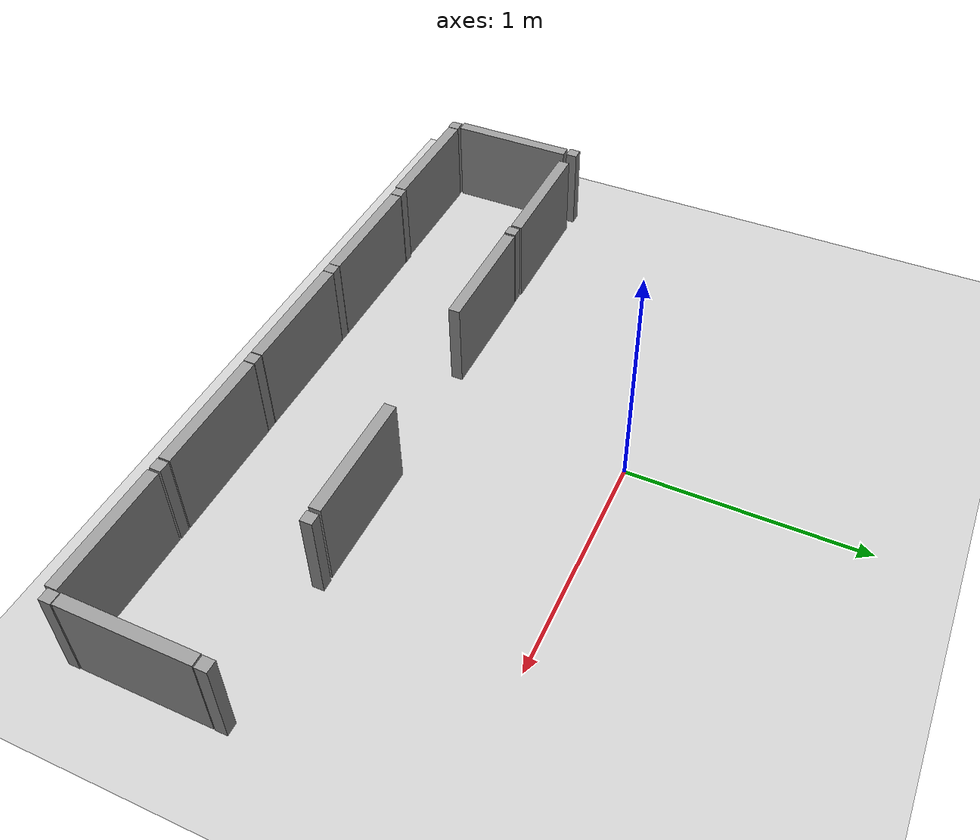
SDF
<sdf version="1.6">
 <world name="default">
  <model name="ground_plane">
   <static>1</static>
   <link name="link">
    <collision name="collision">
     <geometry><plane><normal>0 0 1</normal><size>100 100</size></plane></geometry>
     <surface>
      <contact><collide_bitmask>65535</collide_bitmask></contact>
      <friction><ode><mu>100</mu><mu2>50</mu2></ode></friction>
     </surface>
    </collision>
    <visual name="visual">
     <cast_shadows>0</cast_shadows>
     <geometry><plane><normal>0 0 1</normal><size>100 100</size></plane></geometry>
     <material>
      <script><uri>file://media/materials/scripts/gazebo.material</uri><name>Gazebo/Grey</name></script>
     </material>
    </visual>
   </link>
  </model>
  <model name="white_maze">
   <link name="link_0">
    <inertial>
     <mass>1</mass>
     <inertia>
      <ixx>0.166667</ixx>
      <ixy>0</ixy>
      <ixz>0</ixz>
      <iyy>0.166667</iyy>
      <iyz>0</iyz>
      <izz>0.166667</izz>
     </inertia>
    </inertial>
    <pose>-1.23382 -1.58127 0 0 -0 0</pose>
    <visual name="visual">
     <geometry><box><size>0.55 0.05 0.4</size></box></geometry>
     <material>
      <lighting>1</lighting>
      <script><uri>file://media/materials/scripts/gazebo.material</uri><name>Gazebo/Grey</name></script>
      <shader type="vertex"><normal_map>__default__</normal_map></shader>
      <ambient>1 1 1 1</ambient>
      <diffuse>0.7 0.7 0.7 1</diffuse>
      <specular>0.01 0.01 0.01 1</specular>
      <emissive>0 0 0 1</emissive>
     </material>
    </visual>
    <collision name="collision">
     <geometry><box><size>0.55 0.05 0.4</size></box></geometry>
     <surface>
      <friction>
       <ode><mu>1</mu><mu2>1</mu2><fdir1>0 0 0</fdir1><slip1>0</slip1><slip2>0</slip2></ode>
       <torsional>
        <coefficient>1</coefficient>
        <patch_radius>0</patch_radius>
        <surface_radius>0</surface_radius>
        <use_patch_radius>1</use_patch_radius>
        <ode><slip>0</slip></ode>
       </torsional>
      </friction>
      <bounce><restitution_coefficient>0</restitution_coefficient><threshold>1e+06</threshold></bounce>
      <contact>
       <collide_without_contact>0</collide_without_contact>
       <collide_without_contact_bitmask>1</collide_without_contact_bitmask>
       <collide_bitmask>1</collide_bitmask>
       <ode>
        <soft_cfm>0</soft_cfm>
        <soft_erp>0.2</soft_erp>
        <kp>1e+13</kp>
        <kd>1</kd>
        <max_vel>0.01</max_vel>
        <min_depth>0</min_depth>
       </ode>
       <bullet>
        <split_impulse>1</split_impulse>
        <split_impulse_penetration_threshold>-0.01</split_impulse_penetration_threshold>
        <soft_cfm>0</soft_cfm>
        <soft_erp>0.2</soft_erp>
        <kp>1e+13</kp>
        <kd>1</kd>
       </bullet>
      </contact>
     </surface>
    </collision>
   </link>
   <link name="link_0_clone">
    <inertial>
     <mass>1</mass>
     <inertia>
      <ixx>0.166667</ixx>
      <ixy>0</ixy>
      <ixz>0</ixz>
      <iyy>0.166667</iyy>
      <iyz>0</iyz>
      <izz>0.166667</izz>
     </inertia>
    </inertial>
    <pose>-0.627493 -1.57445 0 0 -0 0</pose>
    <visual name="visual">
     <geometry><box><size>0.55 0.05 0.4</size></box></geometry>
     <material>
      <lighting>1</lighting>
      <script><uri>file://media/materials/scripts/gazebo.material</uri><name>Gazebo/Grey</name></script>
      <shader type="vertex"><normal_map>__default__</normal_map></shader>
      <ambient>1 1 1 1</ambient>
      <diffuse>0.7 0.7 0.7 1</diffuse>
      <specular>0.01 0.01 0.01 1</specular>
      <emissive>0 0 0 1</emissive>
     </material>
    </visual>
    <collision name="collision">
     <geometry><box><size>0.55 0.05 0.4</size></box></geometry>
     <surface>
      <friction>
       <ode><mu>1</mu><mu2>1</mu2><fdir1>0 0 0</fdir1><slip1>0</slip1><slip2>0</slip2></ode>
       <torsional>
        <coefficient>1</coefficient>
        <patch_radius>0</patch_radius>
        <surface_radius>0</surface_radius>
        <use_patch_radius>1</use_patch_radius>
        <ode><slip>0</slip></ode>
       </torsional>
      </friction>
      <bounce><restitution_coefficient>0</restitution_coefficient><threshold>1e+06</threshold></bounce>
      <contact>
       <collide_without_contact>0</collide_without_contact>
       <collide_without_contact_bitmask>1</collide_without_contact_bitmask>
       <collide_bitmask>1</collide_bitmask>
       <ode>
        <soft_cfm>0</soft_cfm>
        <soft_erp>0.2</soft_erp>
        <kp>1e+13</kp>
        <kd>1</kd>
        <max_vel>0.01</max_vel>
        <min_depth>0</min_depth>
       </ode>
       <bullet>
        <split_impulse>1</split_impulse>
        <split_impulse_penetration_threshold>-0.01</split_impulse_penetration_threshold>
        <soft_cfm>0</soft_cfm>
        <soft_erp>0.2</soft_erp>
        <kp>1e+13</kp>
        <kd>1</kd>
       </bullet>
      </contact>
     </surface>
    </collision>
   </link>
   <link name="link_0_clone_0">
    <inertial>
     <mass>1</mass>
     <inertia>
      <ixx>0.166667</ixx>
      <ixy>0</ixy>
      <ixz>0</ixz>
      <iyy>0.166667</iyy>
      <iyz>0</iyz>
      <izz>0.166667</izz>
     </inertia>
    </inertial>
    <pose>-0.023747 -1.57344 0 0 -0 0</pose>
    <visual name="visual">
     <geometry><box><size>0.55 0.05 0.4</size></box></geometry>
     <material>
      <lighting>1</lighting>
      <script><uri>file://media/materials/scripts/gazebo.material</uri><name>Gazebo/Grey</name></script>
      <shader type="vertex"><normal_map>__default__</normal_map></shader>
      <ambient>1 1 1 1</ambient>
      <diffuse>0.7 0.7 0.7 1</diffuse>
      <specular>0.01 0.01 0.01 1</specular>
      <emissive>0 0 0 1</emissive>
     </material>
    </visual>
    <collision name="collision">
     <geometry><box><size>0.55 0.05 0.4</size></box></geometry>
     <surface>
      <friction>
       <ode><mu>1</mu><mu2>1</mu2><fdir1>0 0 0</fdir1><slip1>0</slip1><slip2>0</slip2></ode>
       <torsional>
        <coefficient>1</coefficient>
        <patch_radius>0</patch_radius>
        <surface_radius>0</surface_radius>
        <use_patch_radius>1</use_patch_radius>
        <ode><slip>0</slip></ode>
       </torsional>
      </friction>
      <bounce><restitution_coefficient>0</restitution_coefficient><threshold>1e+06</threshold></bounce>
      <contact>
       <collide_without_contact>0</collide_without_contact>
       <collide_without_contact_bitmask>1</collide_without_contact_bitmask>
       <collide_bitmask>1</collide_bitmask>
       <ode>
        <soft_cfm>0</soft_cfm>
        <soft_erp>0.2</soft_erp>
        <kp>1e+13</kp>
        <kd>1</kd>
        <max_vel>0.01</max_vel>
        <min_depth>0</min_depth>
       </ode>
       <bullet>
        <split_impulse>1</split_impulse>
        <split_impulse_penetration_threshold>-0.01</split_impulse_penetration_threshold>
        <soft_cfm>0</soft_cfm>
        <soft_erp>0.2</soft_erp>
        <kp>1e+13</kp>
        <kd>1</kd>
       </bullet>
      </contact>
     </surface>
    </collision>
   </link>
   <link name="link_0_clone_1">
    <inertial>
     <mass>1</mass>
     <inertia>
      <ixx>0.166667</ixx>
      <ixy>0</ixy>
      <ixz>0</ixz>
      <iyy>0.166667</iyy>
      <iyz>0</iyz>
      <izz>0.166667</izz>
     </inertia>
    </inertial>
    <pose>0.582587 -1.57153 0 0 -0 0</pose>
    <visual name="visual">
     <geometry><box><size>0.55 0.05 0.4</size></box></geometry>
     <material>
      <lighting>1</lighting>
      <script><uri>file://media/materials/scripts/gazebo.material</uri><name>Gazebo/Grey</name></script>
      <shader type="vertex"><normal_map>__default__</normal_map></shader>
      <ambient>1 1 1 1</ambient>
      <diffuse>0.7 0.7 0.7 1</diffuse>
      <specular>0.01 0.01 0.01 1</specular>
      <emissive>0 0 0 1</emissive>
     </material>
    </visual>
    <collision name="collision">
     <geometry><box><size>0.55 0.05 0.4</size></box></geometry>
     <surface>
      <friction>
       <ode><mu>1</mu><mu2>1</mu2><fdir1>0 0 0</fdir1><slip1>0</slip1><slip2>0</slip2></ode>
       <torsional>
        <coefficient>1</coefficient>
        <patch_radius>0</patch_radius>
        <surface_radius>0</surface_radius>
        <use_patch_radius>1</use_patch_radius>
        <ode><slip>0</slip></ode>
       </torsional>
      </friction>
      <bounce><restitution_coefficient>0</restitution_coefficient><threshold>1e+06</threshold></bounce>
      <contact>
       <collide_without_contact>0</collide_without_contact>
       <collide_without_contact_bitmask>1</collide_without_contact_bitmask>
       <collide_bitmask>1</collide_bitmask>
       <ode>
        <soft_cfm>0</soft_cfm>
        <soft_erp>0.2</soft_erp>
        <kp>1e+13</kp>
        <kd>1</kd>
        <max_vel>0.01</max_vel>
        <min_depth>0</min_depth>
       </ode>
       <bullet>
        <split_impulse>1</split_impulse>
        <split_impulse_penetration_threshold>-0.01</split_impulse_penetration_threshold>
        <soft_cfm>0</soft_cfm>
        <soft_erp>0.2</soft_erp>
        <kp>1e+13</kp>
        <kd>1</kd>
       </bullet>
      </contact>
     </surface>
    </collision>
   </link>
   <link name="link_0_clone_1_clone">
    <inertial>
     <mass>1</mass>
     <inertia>
      <ixx>0.166667</ixx>
      <ixy>0</ixy>
      <ixz>0</ixz>
      <iyy>0.166667</iyy>
      <iyz>0</iyz>
      <izz>0.166667</izz>
     </inertia>
    </inertial>
    <pose>1.49724 -1.25172 0 0 0 -1.57264</pose>
    <visual name="visual">
     <geometry><box><size>0.55 0.05 0.4</size></box></geometry>
     <material>
      <lighting>1</lighting>
      <script><uri>file://media/materials/scripts/gazebo.material</uri><name>Gazebo/Grey</name></script>
      <shader type="vertex"><normal_map>__default__</normal_map></shader>
      <ambient>1 1 1 1</ambient>
      <diffuse>0.7 0.7 0.7 1</diffuse>
      <specular>0.01 0.01 0.01 1</specular>
      <emissive>0 0 0 1</emissive>
     </material>
    </visual>
    <collision name="collision">
     <geometry><box><size>0.55 0.05 0.4</size></box></geometry>
     <surface>
      <friction>
       <ode><mu>1</mu><mu2>1</mu2><fdir1>0 0 0</fdir1><slip1>0</slip1><slip2>0</slip2></ode>
       <torsional>
        <coefficient>1</coefficient>
        <patch_radius>0</patch_radius>
        <surface_radius>0</surface_radius>
        <use_patch_radius>1</use_patch_radius>
        <ode><slip>0</slip></ode>
       </torsional>
      </friction>
      <bounce><restitution_coefficient>0</restitution_coefficient><threshold>1e+06</threshold></bounce>
      <contact>
       <collide_without_contact>0</collide_without_contact>
       <collide_without_contact_bitmask>1</collide_without_contact_bitmask>
       <collide_bitmask>1</collide_bitmask>
       <ode>
        <soft_cfm>0</soft_cfm>
        <soft_erp>0.2</soft_erp>
        <kp>1e+13</kp>
        <kd>1</kd>
        <max_vel>0.01</max_vel>
        <min_depth>0</min_depth>
       </ode>
       <bullet>
        <split_impulse>1</split_impulse>
        <split_impulse_penetration_threshold>-0.01</split_impulse_penetration_threshold>
        <soft_cfm>0</soft_cfm>
        <soft_erp>0.2</soft_erp>
        <kp>1e+13</kp>
        <kd>1</kd>
       </bullet>
      </contact>
     </surface>
    </collision>
   </link>
   <link name="link_0_clone_1_clone_clone_1_clone">
    <inertial>
     <mass>1</mass>
     <inertia>
      <ixx>0.166667</ixx>
      <ixy>0</ixy>
      <ixz>0</ixz>
      <iyy>0.166667</iyy>
      <iyz>0</iyz>
      <izz>0.166667</izz>
     </inertia>
    </inertial>
    <pose>-1.54904 -1.27572 0 0 0 -1.57264</pose>
    <visual name="visual">
     <geometry><box><size>0.55 0.05 0.4</size></box></geometry>
     <material>
      <lighting>1</lighting>
      <script><uri>file://media/materials/scripts/gazebo.material</uri><name>Gazebo/Grey</name></script>
      <shader type="vertex"><normal_map>__default__</normal_map></shader>
      <ambient>1 1 1 1</ambient>
      <diffuse>0.7 0.7 0.7 1</diffuse>
      <specular>0.01 0.01 0.01 1</specular>
      <emissive>0 0 0 1</emissive>
     </material>
    </visual>
    <collision name="collision">
     <geometry><box><size>0.55 0.05 0.4</size></box></geometry>
     <surface>
      <friction>
       <ode><mu>1</mu><mu2>1</mu2><fdir1>0 0 0</fdir1><slip1>0</slip1><slip2>0</slip2></ode>
       <torsional>
        <coefficient>1</coefficient>
        <patch_radius>0</patch_radius>
        <surface_radius>0</surface_radius>
        <use_patch_radius>1</use_patch_radius>
        <ode><slip>0</slip></ode>
       </torsional>
      </friction>
      <bounce><restitution_coefficient>0</restitution_coefficient><threshold>1e+06</threshold></bounce>
      <contact>
       <collide_without_contact>0</collide_without_contact>
       <collide_without_contact_bitmask>1</collide_without_contact_bitmask>
       <collide_bitmask>1</collide_bitmask>
       <ode>
        <soft_cfm>0</soft_cfm>
        <soft_erp>0.2</soft_erp>
        <kp>1e+13</kp>
        <kd>1</kd>
        <max_vel>0.01</max_vel>
        <min_depth>0</min_depth>
       </ode>
       <bullet>
        <split_impulse>1</split_impulse>
        <split_impulse_penetration_threshold>-0.01</split_impulse_penetration_threshold>
        <soft_cfm>0</soft_cfm>
        <soft_erp>0.2</soft_erp>
        <kp>1e+13</kp>
        <kd>1</kd>
       </bullet>
      </contact>
     </surface>
    </collision>
   </link>
   <link name="link_0_clone_2">
    <inertial>
     <mass>1</mass>
     <inertia>
      <ixx>0.166667</ixx>
      <ixy>0</ixy>
      <ixz>0</ixz>
      <iyy>0.166667</iyy>
      <iyz>0</iyz>
      <izz>0.166667</izz>
     </inertia>
    </inertial>
    <pose>1.1966 -1.5721 0 0 -0 0</pose>
    <visual name="visual">
     <geometry><box><size>0.55 0.05 0.4</size></box></geometry>
     <material>
      <lighting>1</lighting>
      <script><uri>file://media/materials/scripts/gazebo.material</uri><name>Gazebo/Grey</name></script>
      <shader type="vertex"><normal_map>__default__</normal_map></shader>
      <ambient>1 1 1 1</ambient>
      <diffuse>0.7 0.7 0.7 1</diffuse>
      <specular>0.01 0.01 0.01 1</specular>
      <emissive>0 0 0 1</emissive>
     </material>
    </visual>
    <collision name="collision">
     <geometry><box><size>0.55 0.05 0.4</size></box></geometry>
     <surface>
      <friction>
       <ode><mu>1</mu><mu2>1</mu2><fdir1>0 0 0</fdir1><slip1>0</slip1><slip2>0</slip2></ode>
       <torsional>
        <coefficient>1</coefficient>
        <patch_radius>0</patch_radius>
        <surface_radius>0</surface_radius>
        <use_patch_radius>1</use_patch_radius>
        <ode><slip>0</slip></ode>
       </torsional>
      </friction>
      <bounce><restitution_coefficient>0</restitution_coefficient><threshold>1e+06</threshold></bounce>
      <contact>
       <collide_without_contact>0</collide_without_contact>
       <collide_without_contact_bitmask>1</collide_without_contact_bitmask>
       <collide_bitmask>1</collide_bitmask>
       <ode>
        <soft_cfm>0</soft_cfm>
        <soft_erp>0.2</soft_erp>
        <kp>1e+13</kp>
        <kd>1</kd>
        <max_vel>0.01</max_vel>
        <min_depth>0</min_depth>
       </ode>
       <bullet>
        <split_impulse>1</split_impulse>
        <split_impulse_penetration_threshold>-0.01</split_impulse_penetration_threshold>
        <soft_cfm>0</soft_cfm>
        <soft_erp>0.2</soft_erp>
        <kp>1e+13</kp>
        <kd>1</kd>
       </bullet>
      </contact>
     </surface>
    </collision>
   </link>
   <link name="link_0_clone_3">
    <inertial>
     <mass>1</mass>
     <inertia>
      <ixx>0.166667</ixx>
      <ixy>0</ixy>
      <ixz>0</ixz>
      <iyy>0.166667</iyy>
      <iyz>0</iyz>
      <izz>0.166667</izz>
     </inertia>
    </inertial>
    <pose>-1.19167 -0.973521 0 0 -0 0</pose>
    <visual name="visual">
     <geometry><box><size>0.55 0.05 0.4</size></box></geometry>
     <material>
      <lighting>1</lighting>
      <script><uri>file://media/materials/scripts/gazebo.material</uri><name>Gazebo/Grey</name></script>
      <shader type="vertex"><normal_map>__default__</normal_map></shader>
      <ambient>1 1 1 1</ambient>
      <diffuse>0.7 0.7 0.7 1</diffuse>
      <specular>0.01 0.01 0.01 1</specular>
      <emissive>0 0 0 1</emissive>
     </material>
    </visual>
    <collision name="collision">
     <geometry><box><size>0.55 0.05 0.4</size></box></geometry>
     <surface>
      <friction>
       <ode><mu>1</mu><mu2>1</mu2><fdir1>0 0 0</fdir1><slip1>0</slip1><slip2>0</slip2></ode>
       <torsional>
        <coefficient>1</coefficient>
        <patch_radius>0</patch_radius>
        <surface_radius>0</surface_radius>
        <use_patch_radius>1</use_patch_radius>
        <ode><slip>0</slip></ode>
       </torsional>
      </friction>
      <bounce><restitution_coefficient>0</restitution_coefficient><threshold>1e+06</threshold></bounce>
      <contact>
       <collide_without_contact>0</collide_without_contact>
       <collide_without_contact_bitmask>1</collide_without_contact_bitmask>
       <collide_bitmask>1</collide_bitmask>
       <ode>
        <soft_cfm>0</soft_cfm>
        <soft_erp>0.2</soft_erp>
        <kp>1e+13</kp>
        <kd>1</kd>
        <max_vel>0.01</max_vel>
        <min_depth>0</min_depth>
       </ode>
       <bullet>
        <split_impulse>1</split_impulse>
        <split_impulse_penetration_threshold>-0.01</split_impulse_penetration_threshold>
        <soft_cfm>0</soft_cfm>
        <soft_erp>0.2</soft_erp>
        <kp>1e+13</kp>
        <kd>1</kd>
       </bullet>
      </contact>
     </surface>
    </collision>
   </link>
   <link name="link_0_clone_4">
    <inertial>
     <mass>1</mass>
     <inertia>
      <ixx>0.166667</ixx>
      <ixy>0</ixy>
      <ixz>0</ixz>
      <iyy>0.166667</iyy>
      <iyz>0</iyz>
      <izz>0.166667</izz>
     </inertia>
    </inertial>
    <pose>-0.57296 -0.976241 0 0 -0 0</pose>
    <visual name="visual">
     <geometry><box><size>0.55 0.05 0.4</size></box></geometry>
     <material>
      <lighting>1</lighting>
      <script><uri>file://media/materials/scripts/gazebo.material</uri><name>Gazebo/Grey</name></script>
      <shader type="vertex"><normal_map>__default__</normal_map></shader>
      <ambient>1 1 1 1</ambient>
      <diffuse>0.7 0.7 0.7 1</diffuse>
      <specular>0.01 0.01 0.01 1</specular>
      <emissive>0 0 0 1</emissive>
     </material>
    </visual>
    <collision name="collision">
     <geometry><box><size>0.55 0.05 0.4</size></box></geometry>
     <surface>
      <friction>
       <ode><mu>1</mu><mu2>1</mu2><fdir1>0 0 0</fdir1><slip1>0</slip1><slip2>0</slip2></ode>
       <torsional>
        <coefficient>1</coefficient>
        <patch_radius>0</patch_radius>
        <surface_radius>0</surface_radius>
        <use_patch_radius>1</use_patch_radius>
        <ode><slip>0</slip></ode>
       </torsional>
      </friction>
      <bounce><restitution_coefficient>0</restitution_coefficient><threshold>1e+06</threshold></bounce>
      <contact>
       <collide_without_contact>0</collide_without_contact>
       <collide_without_contact_bitmask>1</collide_without_contact_bitmask>
       <collide_bitmask>1</collide_bitmask>
       <ode>
        <soft_cfm>0</soft_cfm>
        <soft_erp>0.2</soft_erp>
        <kp>1e+13</kp>
        <kd>1</kd>
        <max_vel>0.01</max_vel>
        <min_depth>0</min_depth>
       </ode>
       <bullet>
        <split_impulse>1</split_impulse>
        <split_impulse_penetration_threshold>-0.01</split_impulse_penetration_threshold>
        <soft_cfm>0</soft_cfm>
        <soft_erp>0.2</soft_erp>
        <kp>1e+13</kp>
        <kd>1</kd>
       </bullet>
      </contact>
     </surface>
    </collision>
   </link>
   <link name="link_0_clone_4_clone">
    <inertial>
     <mass>1</mass>
     <inertia>
      <ixx>0.166667</ixx>
      <ixy>0</ixy>
      <ixz>0</ixz>
      <iyy>0.166667</iyy>
      <iyz>0</iyz>
      <izz>0.166667</izz>
     </inertia>
    </inertial>
    <pose>0.555919 -0.956127 0 0 -0 0</pose>
    <visual name="visual">
     <geometry><box><size>0.55 0.05 0.4</size></box></geometry>
     <material>
      <lighting>1</lighting>
      <script><uri>file://media/materials/scripts/gazebo.material</uri><name>Gazebo/Grey</name></script>
      <shader type="vertex"><normal_map>__default__</normal_map></shader>
      <ambient>1 1 1 1</ambient>
      <diffuse>0.7 0.7 0.7 1</diffuse>
      <specular>0.01 0.01 0.01 1</specular>
      <emissive>0 0 0 1</emissive>
     </material>
    </visual>
    <collision name="collision">
     <geometry><box><size>0.55 0.05 0.4</size></box></geometry>
     <surface>
      <friction>
       <ode><mu>1</mu><mu2>1</mu2><fdir1>0 0 0</fdir1><slip1>0</slip1><slip2>0</slip2></ode>
       <torsional>
        <coefficient>1</coefficient>
        <patch_radius>0</patch_radius>
        <surface_radius>0</surface_radius>
        <use_patch_radius>1</use_patch_radius>
        <ode><slip>0</slip></ode>
       </torsional>
      </friction>
      <bounce><restitution_coefficient>0</restitution_coefficient><threshold>1e+06</threshold></bounce>
      <contact>
       <collide_without_contact>0</collide_without_contact>
       <collide_without_contact_bitmask>1</collide_without_contact_bitmask>
       <collide_bitmask>1</collide_bitmask>
       <ode>
        <soft_cfm>0</soft_cfm>
        <soft_erp>0.2</soft_erp>
        <kp>1e+13</kp>
        <kd>1</kd>
        <max_vel>0.01</max_vel>
        <min_depth>0</min_depth>
       </ode>
       <bullet>
        <split_impulse>1</split_impulse>
        <split_impulse_penetration_threshold>-0.01</split_impulse_penetration_threshold>
        <soft_cfm>0</soft_cfm>
        <soft_erp>0.2</soft_erp>
        <kp>1e+13</kp>
        <kd>1</kd>
       </bullet>
      </contact>
     </surface>
    </collision>
   </link>
   <link name="link_1">
    <inertial>
     <mass>1</mass>
     <inertia>
      <ixx>0.166667</ixx>
      <ixy>0</ixy>
      <ixz>0</ixz>
      <iyy>0.166667</iyy>
      <iyz>0</iyz>
      <izz>0.166667</izz>
     </inertia>
    </inertial>
    <pose>-0.930594 -1.57378 0 0 -0 0</pose>
    <visual name="visual">
     <geometry><box><size>0.05 0.05 0.4</size></box></geometry>
     <material>
      <lighting>1</lighting>
      <script><uri>file://media/materials/scripts/gazebo.material</uri><name>Gazebo/Grey</name></script>
      <shader type="vertex"><normal_map>__default__</normal_map></shader>
      <ambient>0.3 0.3 0.3 1</ambient>
      <diffuse>0.7 0.7 0.7 1</diffuse>
      <specular>0.01 0.01 0.01 1</specular>
      <emissive>0 0 0 1</emissive>
     </material>
    </visual>
    <collision name="collision">
     <geometry><box><size>0.05 0.05 0.4</size></box></geometry>
     <surface>
      <friction>
       <ode><mu>1</mu><mu2>1</mu2><fdir1>0 0 0</fdir1><slip1>0</slip1><slip2>0</slip2></ode>
       <torsional>
        <coefficient>1</coefficient>
        <patch_radius>0</patch_radius>
        <surface_radius>0</surface_radius>
        <use_patch_radius>1</use_patch_radius>
        <ode><slip>0</slip></ode>
       </torsional>
      </friction>
      <bounce><restitution_coefficient>0</restitution_coefficient><threshold>1e+06</threshold></bounce>
      <contact>
       <collide_without_contact>0</collide_without_contact>
       <collide_without_contact_bitmask>1</collide_without_contact_bitmask>
       <collide_bitmask>1</collide_bitmask>
       <ode>
        <soft_cfm>0</soft_cfm>
        <soft_erp>0.2</soft_erp>
        <kp>1e+13</kp>
        <kd>1</kd>
        <max_vel>0.01</max_vel>
        <min_depth>0</min_depth>
       </ode>
       <bullet>
        <split_impulse>1</split_impulse>
        <split_impulse_penetration_threshold>-0.01</split_impulse_penetration_threshold>
        <soft_cfm>0</soft_cfm>
        <soft_erp>0.2</soft_erp>
        <kp>1e+13</kp>
        <kd>1</kd>
       </bullet>
      </contact>
     </surface>
    </collision>
   </link>
   <link name="link_1_clone">
    <inertial>
     <mass>1</mass>
     <inertia>
      <ixx>0.166667</ixx>
      <ixy>0</ixy>
      <ixz>0</ixz>
      <iyy>0.166667</iyy>
      <iyz>0</iyz>
      <izz>0.166667</izz>
     </inertia>
    </inertial>
    <pose>-0.325773 -1.57426 0 0 -0 0</pose>
    <visual name="visual">
     <geometry><box><size>0.05 0.05 0.4</size></box></geometry>
     <material>
      <lighting>1</lighting>
      <script><uri>file://media/materials/scripts/gazebo.material</uri><name>Gazebo/Grey</name></script>
      <shader type="vertex"><normal_map>__default__</normal_map></shader>
      <ambient>0.3 0.3 0.3 1</ambient>
      <diffuse>0.7 0.7 0.7 1</diffuse>
      <specular>0.01 0.01 0.01 1</specular>
      <emissive>0 0 0 1</emissive>
     </material>
    </visual>
    <collision name="collision">
     <geometry><box><size>0.05 0.05 0.4</size></box></geometry>
     <surface>
      <friction>
       <ode><mu>1</mu><mu2>1</mu2><fdir1>0 0 0</fdir1><slip1>0</slip1><slip2>0</slip2></ode>
       <torsional>
        <coefficient>1</coefficient>
        <patch_radius>0</patch_radius>
        <surface_radius>0</surface_radius>
        <use_patch_radius>1</use_patch_radius>
        <ode><slip>0</slip></ode>
       </torsional>
      </friction>
      <bounce><restitution_coefficient>0</restitution_coefficient><threshold>1e+06</threshold></bounce>
      <contact>
       <collide_without_contact>0</collide_without_contact>
       <collide_without_contact_bitmask>1</collide_without_contact_bitmask>
       <collide_bitmask>1</collide_bitmask>
       <ode>
        <soft_cfm>0</soft_cfm>
        <soft_erp>0.2</soft_erp>
        <kp>1e+13</kp>
        <kd>1</kd>
        <max_vel>0.01</max_vel>
        <min_depth>0</min_depth>
       </ode>
       <bullet>
        <split_impulse>1</split_impulse>
        <split_impulse_penetration_threshold>-0.01</split_impulse_penetration_threshold>
        <soft_cfm>0</soft_cfm>
        <soft_erp>0.2</soft_erp>
        <kp>1e+13</kp>
        <kd>1</kd>
       </bullet>
      </contact>
     </surface>
    </collision>
   </link>
   <link name="link_1_clone_0">
    <inertial>
     <mass>1</mass>
     <inertia>
      <ixx>0.166667</ixx>
      <ixy>0</ixy>
      <ixz>0</ixz>
      <iyy>0.166667</iyy>
      <iyz>0</iyz>
      <izz>0.166667</izz>
     </inertia>
    </inertial>
    <pose>0.279583 -1.57311 0 0 -0 0</pose>
    <visual name="visual">
     <geometry><box><size>0.05 0.05 0.4</size></box></geometry>
     <material>
      <lighting>1</lighting>
      <script><uri>file://media/materials/scripts/gazebo.material</uri><name>Gazebo/Grey</name></script>
      <shader type="vertex"><normal_map>__default__</normal_map></shader>
      <ambient>0.3 0.3 0.3 1</ambient>
      <diffuse>0.7 0.7 0.7 1</diffuse>
      <specular>0.01 0.01 0.01 1</specular>
      <emissive>0 0 0 1</emissive>
     </material>
    </visual>
    <collision name="collision">
     <geometry><box><size>0.05 0.05 0.4</size></box></geometry>
     <surface>
      <friction>
       <ode><mu>1</mu><mu2>1</mu2><fdir1>0 0 0</fdir1><slip1>0</slip1><slip2>0</slip2></ode>
       <torsional>
        <coefficient>1</coefficient>
        <patch_radius>0</patch_radius>
        <surface_radius>0</surface_radius>
        <use_patch_radius>1</use_patch_radius>
        <ode><slip>0</slip></ode>
       </torsional>
      </friction>
      <bounce><restitution_coefficient>0</restitution_coefficient><threshold>1e+06</threshold></bounce>
      <contact>
       <collide_without_contact>0</collide_without_contact>
       <collide_without_contact_bitmask>1</collide_without_contact_bitmask>
       <collide_bitmask>1</collide_bitmask>
       <ode>
        <soft_cfm>0</soft_cfm>
        <soft_erp>0.2</soft_erp>
        <kp>1e+13</kp>
        <kd>1</kd>
        <max_vel>0.01</max_vel>
        <min_depth>0</min_depth>
       </ode>
       <bullet>
        <split_impulse>1</split_impulse>
        <split_impulse_penetration_threshold>-0.01</split_impulse_penetration_threshold>
        <soft_cfm>0</soft_cfm>
        <soft_erp>0.2</soft_erp>
        <kp>1e+13</kp>
        <kd>1</kd>
       </bullet>
      </contact>
     </surface>
    </collision>
   </link>
   <link name="link_1_clone_1">
    <inertial>
     <mass>1</mass>
     <inertia>
      <ixx>0.166667</ixx>
      <ixy>0</ixy>
      <ixz>0</ixz>
      <iyy>0.166667</iyy>
      <iyz>0</iyz>
      <izz>0.166667</izz>
     </inertia>
    </inertial>
    <pose>0.888477 -1.57126 0 0 -0 0</pose>
    <visual name="visual">
     <geometry><box><size>0.05 0.05 0.4</size></box></geometry>
     <material>
      <lighting>1</lighting>
      <script><uri>file://media/materials/scripts/gazebo.material</uri><name>Gazebo/Grey</name></script>
      <shader type="vertex"><normal_map>__default__</normal_map></shader>
      <ambient>0.3 0.3 0.3 1</ambient>
      <diffuse>0.7 0.7 0.7 1</diffuse>
      <specular>0.01 0.01 0.01 1</specular>
      <emissive>0 0 0 1</emissive>
     </material>
    </visual>
    <collision name="collision">
     <geometry><box><size>0.05 0.05 0.4</size></box></geometry>
     <surface>
      <friction>
       <ode><mu>1</mu><mu2>1</mu2><fdir1>0 0 0</fdir1><slip1>0</slip1><slip2>0</slip2></ode>
       <torsional>
        <coefficient>1</coefficient>
        <patch_radius>0</patch_radius>
        <surface_radius>0</surface_radius>
        <use_patch_radius>1</use_patch_radius>
        <ode><slip>0</slip></ode>
       </torsional>
      </friction>
      <bounce><restitution_coefficient>0</restitution_coefficient><threshold>1e+06</threshold></bounce>
      <contact>
       <collide_without_contact>0</collide_without_contact>
       <collide_without_contact_bitmask>1</collide_without_contact_bitmask>
       <collide_bitmask>1</collide_bitmask>
       <ode>
        <soft_cfm>0</soft_cfm>
        <soft_erp>0.2</soft_erp>
        <kp>1e+13</kp>
        <kd>1</kd>
        <max_vel>0.01</max_vel>
        <min_depth>0</min_depth>
       </ode>
       <bullet>
        <split_impulse>1</split_impulse>
        <split_impulse_penetration_threshold>-0.01</split_impulse_penetration_threshold>
        <soft_cfm>0</soft_cfm>
        <soft_erp>0.2</soft_erp>
        <kp>1e+13</kp>
        <kd>1</kd>
       </bullet>
      </contact>
     </surface>
    </collision>
   </link>
   <link name="link_1_clone_2">
    <inertial>
     <mass>1</mass>
     <inertia>
      <ixx>0.166667</ixx>
      <ixy>0</ixy>
      <ixz>0</ixz>
      <iyy>0.166667</iyy>
      <iyz>0</iyz>
      <izz>0.166667</izz>
     </inertia>
    </inertial>
    <pose>1.49934 -1.55485 0 0 -0 0</pose>
    <visual name="visual">
     <geometry><box><size>0.05 0.05 0.4</size></box></geometry>
     <material>
      <lighting>1</lighting>
      <script><uri>file://media/materials/scripts/gazebo.material</uri><name>Gazebo/Grey</name></script>
      <shader type="vertex"><normal_map>__default__</normal_map></shader>
      <ambient>0.3 0.3 0.3 1</ambient>
      <diffuse>0.7 0.7 0.7 1</diffuse>
      <specular>0.01 0.01 0.01 1</specular>
      <emissive>0 0 0 1</emissive>
     </material>
    </visual>
    <collision name="collision">
     <geometry><box><size>0.05 0.05 0.4</size></box></geometry>
     <surface>
      <friction>
       <ode><mu>1</mu><mu2>1</mu2><fdir1>0 0 0</fdir1><slip1>0</slip1><slip2>0</slip2></ode>
       <torsional>
        <coefficient>1</coefficient>
        <patch_radius>0</patch_radius>
        <surface_radius>0</surface_radius>
        <use_patch_radius>1</use_patch_radius>
        <ode><slip>0</slip></ode>
       </torsional>
      </friction>
      <bounce><restitution_coefficient>0</restitution_coefficient><threshold>1e+06</threshold></bounce>
      <contact>
       <collide_without_contact>0</collide_without_contact>
       <collide_without_contact_bitmask>1</collide_without_contact_bitmask>
       <collide_bitmask>1</collide_bitmask>
       <ode>
        <soft_cfm>0</soft_cfm>
        <soft_erp>0.2</soft_erp>
        <kp>1e+13</kp>
        <kd>1</kd>
        <max_vel>0.01</max_vel>
        <min_depth>0</min_depth>
       </ode>
       <bullet>
        <split_impulse>1</split_impulse>
        <split_impulse_penetration_threshold>-0.01</split_impulse_penetration_threshold>
        <soft_cfm>0</soft_cfm>
        <soft_erp>0.2</soft_erp>
        <kp>1e+13</kp>
        <kd>1</kd>
       </bullet>
      </contact>
     </surface>
    </collision>
   </link>
   <link name="link_1_clone_3">
    <inertial>
     <mass>1</mass>
     <inertia>
      <ixx>0.166667</ixx>
      <ixy>0</ixy>
      <ixz>0</ixz>
      <iyy>0.166667</iyy>
      <iyz>0</iyz>
      <izz>0.166667</izz>
     </inertia>
    </inertial>
    <pose>1.4991 -0.945949 0 0 -0 0</pose>
    <visual name="visual">
     <geometry><box><size>0.05 0.05 0.4</size></box></geometry>
     <material>
      <lighting>1</lighting>
      <script><uri>file://media/materials/scripts/gazebo.material</uri><name>Gazebo/Grey</name></script>
      <shader type="vertex"><normal_map>__default__</normal_map></shader>
      <ambient>0.3 0.3 0.3 1</ambient>
      <diffuse>0.7 0.7 0.7 1</diffuse>
      <specular>0.01 0.01 0.01 1</specular>
      <emissive>0 0 0 1</emissive>
     </material>
    </visual>
    <collision name="collision">
     <geometry><box><size>0.05 0.05 0.4</size></box></geometry>
     <surface>
      <friction>
       <ode><mu>1</mu><mu2>1</mu2><fdir1>0 0 0</fdir1><slip1>0</slip1><slip2>0</slip2></ode>
       <torsional>
        <coefficient>1</coefficient>
        <patch_radius>0</patch_radius>
        <surface_radius>0</surface_radius>
        <use_patch_radius>1</use_patch_radius>
        <ode><slip>0</slip></ode>
       </torsional>
      </friction>
      <bounce><restitution_coefficient>0</restitution_coefficient><threshold>1e+06</threshold></bounce>
      <contact>
       <collide_without_contact>0</collide_without_contact>
       <collide_without_contact_bitmask>1</collide_without_contact_bitmask>
       <collide_bitmask>1</collide_bitmask>
       <ode>
        <soft_cfm>0</soft_cfm>
        <soft_erp>0.2</soft_erp>
        <kp>1e+13</kp>
        <kd>1</kd>
        <max_vel>0.01</max_vel>
        <min_depth>0</min_depth>
       </ode>
       <bullet>
        <split_impulse>1</split_impulse>
        <split_impulse_penetration_threshold>-0.01</split_impulse_penetration_threshold>
        <soft_cfm>0</soft_cfm>
        <soft_erp>0.2</soft_erp>
        <kp>1e+13</kp>
        <kd>1</kd>
       </bullet>
      </contact>
     </surface>
    </collision>
   </link>
   <link name="link_1_clone_3_clone_2_clone_4_clone">
    <inertial>
     <mass>1</mass>
     <inertia>
      <ixx>0.166667</ixx>
      <ixy>0</ixy>
      <ixz>0</ixz>
      <iyy>0.166667</iyy>
      <iyz>0</iyz>
      <izz>0.166667</izz>
     </inertia>
    </inertial>
    <pose>-0.882258 -0.978459 0 0 -0 0</pose>
    <visual name="visual">
     <geometry><box><size>0.05 0.05 0.4</size></box></geometry>
     <material>
      <lighting>1</lighting>
      <script><uri>file://media/materials/scripts/gazebo.material</uri><name>Gazebo/Grey</name></script>
      <shader type="vertex"><normal_map>__default__</normal_map></shader>
      <ambient>0.3 0.3 0.3 1</ambient>
      <diffuse>0.7 0.7 0.7 1</diffuse>
      <specular>0.01 0.01 0.01 1</specular>
      <emissive>0 0 0 1</emissive>
     </material>
    </visual>
    <collision name="collision">
     <geometry><box><size>0.05 0.05 0.4</size></box></geometry>
     <surface>
      <friction>
       <ode><mu>1</mu><mu2>1</mu2><fdir1>0 0 0</fdir1><slip1>0</slip1><slip2>0</slip2></ode>
       <torsional>
        <coefficient>1</coefficient>
        <patch_radius>0</patch_radius>
        <surface_radius>0</surface_radius>
        <use_patch_radius>1</use_patch_radius>
        <ode><slip>0</slip></ode>
       </torsional>
      </friction>
      <bounce><restitution_coefficient>0</restitution_coefficient><threshold>1e+06</threshold></bounce>
      <contact>
       <collide_without_contact>0</collide_without_contact>
       <collide_without_contact_bitmask>1</collide_without_contact_bitmask>
       <collide_bitmask>1</collide_bitmask>
       <ode>
        <soft_cfm>0</soft_cfm>
        <soft_erp>0.2</soft_erp>
        <kp>1e+13</kp>
        <kd>1</kd>
        <max_vel>0.01</max_vel>
        <min_depth>0</min_depth>
       </ode>
       <bullet>
        <split_impulse>1</split_impulse>
        <split_impulse_penetration_threshold>-0.01</split_impulse_penetration_threshold>
        <soft_cfm>0</soft_cfm>
        <soft_erp>0.2</soft_erp>
        <kp>1e+13</kp>
        <kd>1</kd>
       </bullet>
      </contact>
     </surface>
    </collision>
   </link>
   <link name="link_1_clone_3_clone_2_clone_7">
    <inertial>
     <mass>1</mass>
     <inertia>
      <ixx>0.166667</ixx>
      <ixy>0</ixy>
      <ixz>0</ixz>
      <iyy>0.166667</iyy>
      <iyz>0</iyz>
      <izz>0.166667</izz>
     </inertia>
    </inertial>
    <pose>-1.55596 -0.96312 0 0 -0 0</pose>
    <visual name="visual">
     <geometry><box><size>0.05 0.05 0.4</size></box></geometry>
     <material>
      <lighting>1</lighting>
      <script><uri>file://media/materials/scripts/gazebo.material</uri><name>Gazebo/Grey</name></script>
      <shader type="vertex"><normal_map>__default__</normal_map></shader>
      <ambient>0.3 0.3 0.3 1</ambient>
      <diffuse>0.7 0.7 0.7 1</diffuse>
      <specular>0.01 0.01 0.01 1</specular>
      <emissive>0 0 0 1</emissive>
     </material>
    </visual>
    <collision name="collision">
     <geometry><box><size>0.05 0.05 0.4</size></box></geometry>
     <surface>
      <friction>
       <ode><mu>1</mu><mu2>1</mu2><fdir1>0 0 0</fdir1><slip1>0</slip1><slip2>0</slip2></ode>
       <torsional>
        <coefficient>1</coefficient>
        <patch_radius>0</patch_radius>
        <surface_radius>0</surface_radius>
        <use_patch_radius>1</use_patch_radius>
        <ode><slip>0</slip></ode>
       </torsional>
      </friction>
      <bounce><restitution_coefficient>0</restitution_coefficient><threshold>1e+06</threshold></bounce>
      <contact>
       <collide_without_contact>0</collide_without_contact>
       <collide_without_contact_bitmask>1</collide_without_contact_bitmask>
       <collide_bitmask>1</collide_bitmask>
       <ode>
        <soft_cfm>0</soft_cfm>
        <soft_erp>0.2</soft_erp>
        <kp>1e+13</kp>
        <kd>1</kd>
        <max_vel>0.01</max_vel>
        <min_depth>0</min_depth>
       </ode>
       <bullet>
        <split_impulse>1</split_impulse>
        <split_impulse_penetration_threshold>-0.01</split_impulse_penetration_threshold>
        <soft_cfm>0</soft_cfm>
        <soft_erp>0.2</soft_erp>
        <kp>1e+13</kp>
        <kd>1</kd>
       </bullet>
      </contact>
     </surface>
    </collision>
   </link>
   <link name="link_1_clone_3_clone_2_clone_8">
    <inertial>
     <mass>1</mass>
     <inertia>
      <ixx>0.166667</ixx>
      <ixy>0</ixy>
      <ixz>0</ixz>
      <iyy>0.166667</iyy>
      <iyz>0</iyz>
      <izz>0.166667</izz>
     </inertia>
    </inertial>
    <pose>-1.53728 -1.58411 0 0 -0 0</pose>
    <visual name="visual">
     <geometry><box><size>0.05 0.05 0.4</size></box></geometry>
     <material>
      <lighting>1</lighting>
      <script><uri>file://media/materials/scripts/gazebo.material</uri><name>Gazebo/Grey</name></script>
      <shader type="vertex"><normal_map>__default__</normal_map></shader>
      <ambient>0.3 0.3 0.3 1</ambient>
      <diffuse>0.7 0.7 0.7 1</diffuse>
      <specular>0.01 0.01 0.01 1</specular>
      <emissive>0 0 0 1</emissive>
     </material>
    </visual>
    <collision name="collision">
     <geometry><box><size>0.05 0.05 0.4</size></box></geometry>
     <surface>
      <friction>
       <ode><mu>1</mu><mu2>1</mu2><fdir1>0 0 0</fdir1><slip1>0</slip1><slip2>0</slip2></ode>
       <torsional>
        <coefficient>1</coefficient>
        <patch_radius>0</patch_radius>
        <surface_radius>0</surface_radius>
        <use_patch_radius>1</use_patch_radius>
        <ode><slip>0</slip></ode>
       </torsional>
      </friction>
      <bounce><restitution_coefficient>0</restitution_coefficient><threshold>1e+06</threshold></bounce>
      <contact>
       <collide_without_contact>0</collide_without_contact>
       <collide_without_contact_bitmask>1</collide_without_contact_bitmask>
       <collide_bitmask>1</collide_bitmask>
       <ode>
        <soft_cfm>0</soft_cfm>
        <soft_erp>0.2</soft_erp>
        <kp>1e+13</kp>
        <kd>1</kd>
        <max_vel>0.01</max_vel>
        <min_depth>0</min_depth>
       </ode>
       <bullet>
        <split_impulse>1</split_impulse>
        <split_impulse_penetration_threshold>-0.01</split_impulse_penetration_threshold>
        <soft_cfm>0</soft_cfm>
        <soft_erp>0.2</soft_erp>
        <kp>1e+13</kp>
        <kd>1</kd>
       </bullet>
      </contact>
     </surface>
    </collision>
   </link>
   <link name="link_1_clone_3_clone_3">
    <inertial>
     <mass>1</mass>
     <inertia>
      <ixx>0.166667</ixx>
      <ixy>0</ixy>
      <ixz>0</ixz>
      <iyy>0.166667</iyy>
      <iyz>0</iyz>
      <izz>0.166667</izz>
     </inertia>
    </inertial>
    <pose>0.870214 -0.953047 0 0 -0 0</pose>
    <visual name="visual">
     <geometry><box><size>0.05 0.05 0.4</size></box></geometry>
     <material>
      <lighting>1</lighting>
      <script><uri>file://media/materials/scripts/gazebo.material</uri><name>Gazebo/Grey</name></script>
      <shader type="vertex"><normal_map>__default__</normal_map></shader>
      <ambient>0.3 0.3 0.3 1</ambient>
      <diffuse>0.7 0.7 0.7 1</diffuse>
      <specular>0.01 0.01 0.01 1</specular>
      <emissive>0 0 0 1</emissive>
     </material>
    </visual>
    <collision name="collision">
     <geometry><box><size>0.05 0.05 0.4</size></box></geometry>
     <surface>
      <friction>
       <ode><mu>1</mu><mu2>1</mu2><fdir1>0 0 0</fdir1><slip1>0</slip1><slip2>0</slip2></ode>
       <torsional>
        <coefficient>1</coefficient>
        <patch_radius>0</patch_radius>
        <surface_radius>0</surface_radius>
        <use_patch_radius>1</use_patch_radius>
        <ode><slip>0</slip></ode>
       </torsional>
      </friction>
      <bounce><restitution_coefficient>0</restitution_coefficient><threshold>1e+06</threshold></bounce>
      <contact>
       <collide_without_contact>0</collide_without_contact>
       <collide_without_contact_bitmask>1</collide_without_contact_bitmask>
       <collide_bitmask>1</collide_bitmask>
       <ode>
        <soft_cfm>0</soft_cfm>
        <soft_erp>0.2</soft_erp>
        <kp>1e+13</kp>
        <kd>1</kd>
        <max_vel>0.01</max_vel>
        <min_depth>0</min_depth>
       </ode>
       <bullet>
        <split_impulse>1</split_impulse>
        <split_impulse_penetration_threshold>-0.01</split_impulse_penetration_threshold>
        <soft_cfm>0</soft_cfm>
        <soft_erp>0.2</soft_erp>
        <kp>1e+13</kp>
        <kd>1</kd>
       </bullet>
      </contact>
     </surface>
    </collision>
   </link>
   <static>1</static>
   <pose>0.092452 0.125309 0.185085 0 -0 0</pose>
  </model>
 </world>
</sdf>
